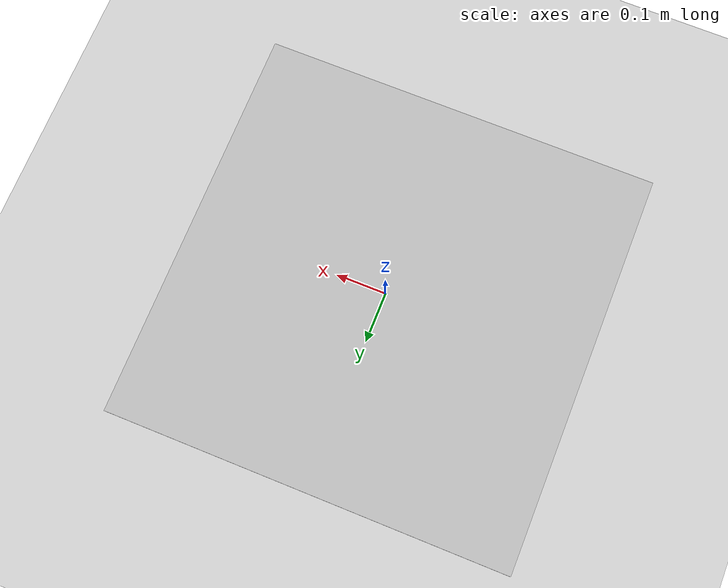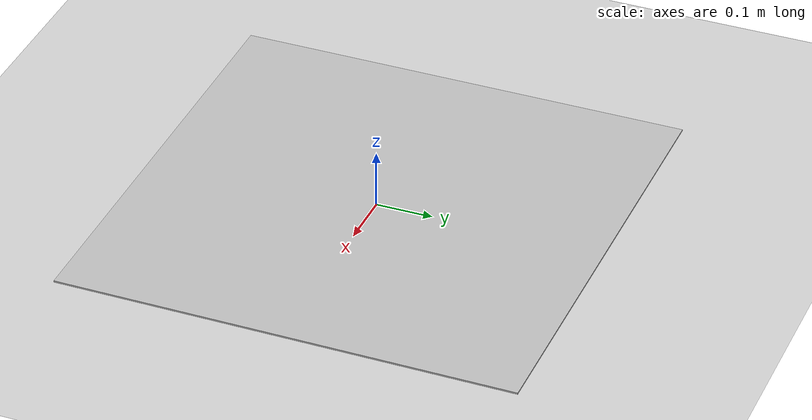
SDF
<sdf version="1.6">
 <world name="default">
  <include><uri>model://sun</uri></include>
  <include><uri>model://ground_plane</uri></include>
  <include><uri>model://marker000</uri><name>marker000</name><static>1</static></include>
  <include><uri>model://marker001</uri><name>marker001</name><static>1</static></include>
  <include><uri>model://marker002</uri><name>marker002</name><static>1</static></include>
 </world>
</sdf>

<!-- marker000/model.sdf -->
<sdf version="1.6">
<model name="marker000">
  <pose>0 0 0 0 0 0</pose>
 <link name="link">
      <inertial>
        <mass>1.0</mass>
        <inertia>
          <ixx>0.083</ixx>
          <ixy>0.0</ixy>
          <ixz>0.0</ixz>
          <iyy>0.083</iyy>
          <iyz>0.0</iyz>
          <izz>0.083</izz>
        </inertia>
      </inertial>
      <collision name="collision">
        <geometry>
          <box>
            <size>0.8 0.8 0.004</size>
          </box>
        </geometry>
      </collision>
      <visual name="visual">
        <geometry>
          <box>
            <size>0.8 0.8 0.004</size>
          </box>
        </geometry>
        <material>
          <script>
            <uri>model://marker001/materials/marker001.material</uri>
            <name>marker001</name>
          </script>
        </material>
      </visual>
    </link>
  </model>
</sdf>

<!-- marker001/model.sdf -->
<sdf version="1.6">
<model name="marker001">
  <pose>0 0 0 0 0 0</pose>
    <link name="link">
      <inertial>
        <mass>1.0</mass>
        <inertia>
          <ixx>0.083</ixx>
          <ixy>0.0</ixy>
          <ixz>0.0</ixz>
          <iyy>0.083</iyy>
          <iyz>0.0</iyz>
          <izz>0.083</izz>
        </inertia>
      </inertial>
      <collision name="collision">
        <geometry>
          <box>
            <size>0.8 0.8 0.004</size>
          </box>
        </geometry>
      </collision>
      <visual name="visual">
        <geometry>
          <box>
            <size>0.8 0.8 0.004</size>
          </box>
        </geometry>
        <material>
          <script>
            <uri>model://marker001/materials/marker001.material</uri>
            <name>marker001</name>
          </script>
        </material>
      </visual>
    </link>
  </model>
</sdf>

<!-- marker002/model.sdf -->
<sdf version="1.6">
<model name="marker002">
  <pose>0 0 0 0 0 0</pose>
    <link name="link">
      <inertial>
        <mass>1.0</mass>
        <inertia>
          <ixx>0.083</ixx>
          <ixy>0.0</ixy>
          <ixz>0.0</ixz>
          <iyy>0.083</iyy>
          <iyz>0.0</iyz>
          <izz>0.083</izz>
        </inertia>
      </inertial>
      <collision name="collision">
        <geometry>
          <box>
            <size>0.8 0.8 0.004</size>
          </box>
        </geometry>
      </collision>
      <visual name="visual">
        <geometry>
          <box>
            <size>0.8 0.8 0.004</size>
          </box>
        </geometry>
        <material>
          <script>
            <uri>model://marker002/materials/marker002.material</uri>
            <name>marker002</name>
          </script>
        </material>
      </visual>
    </link>
  </model>
</sdf>
